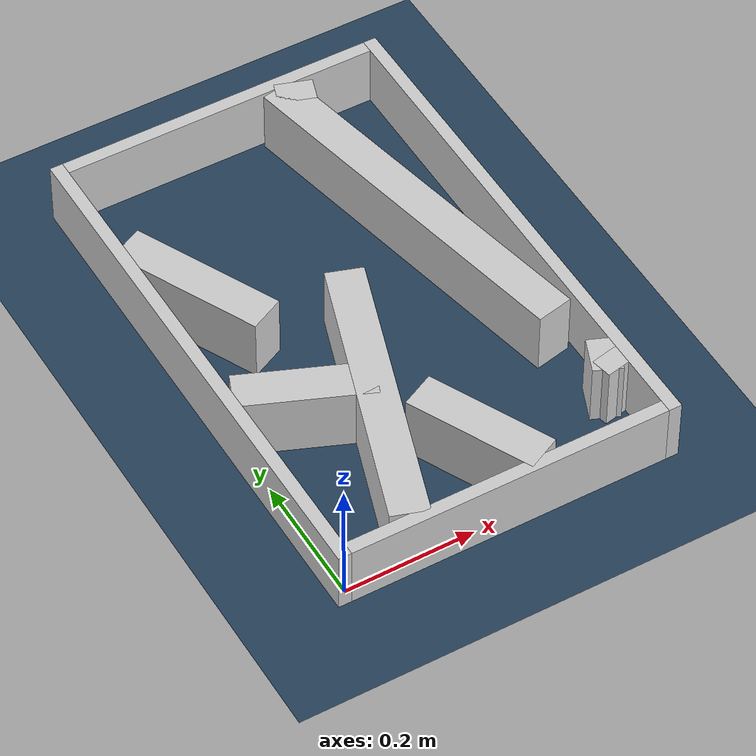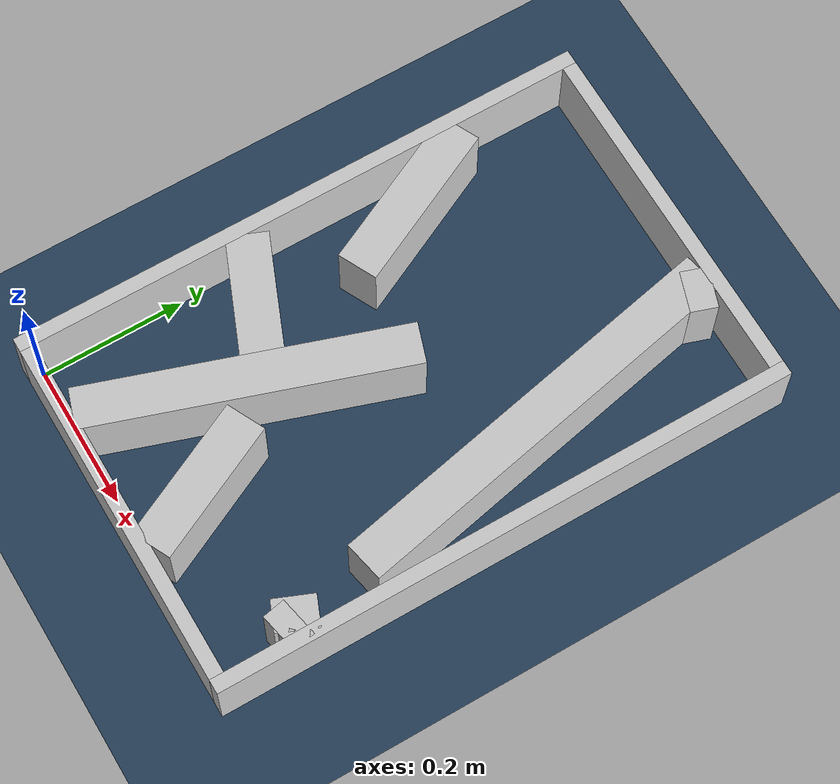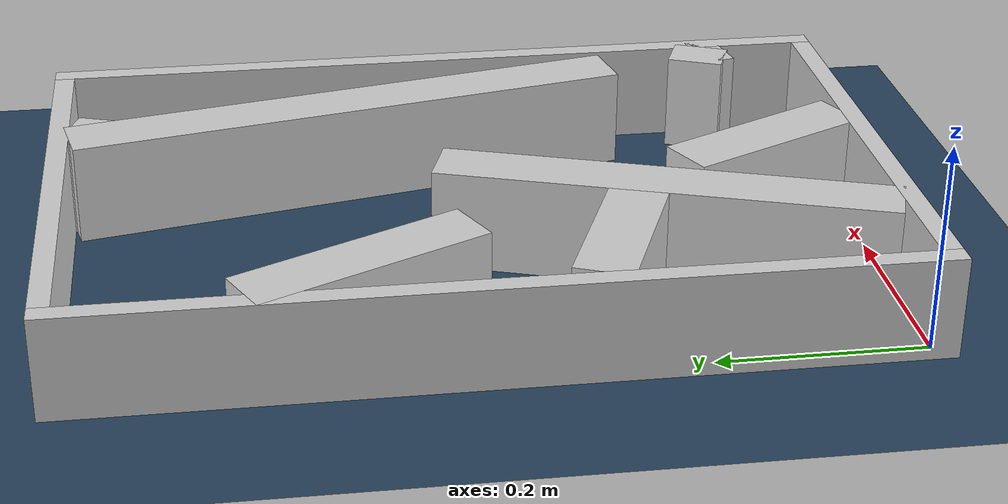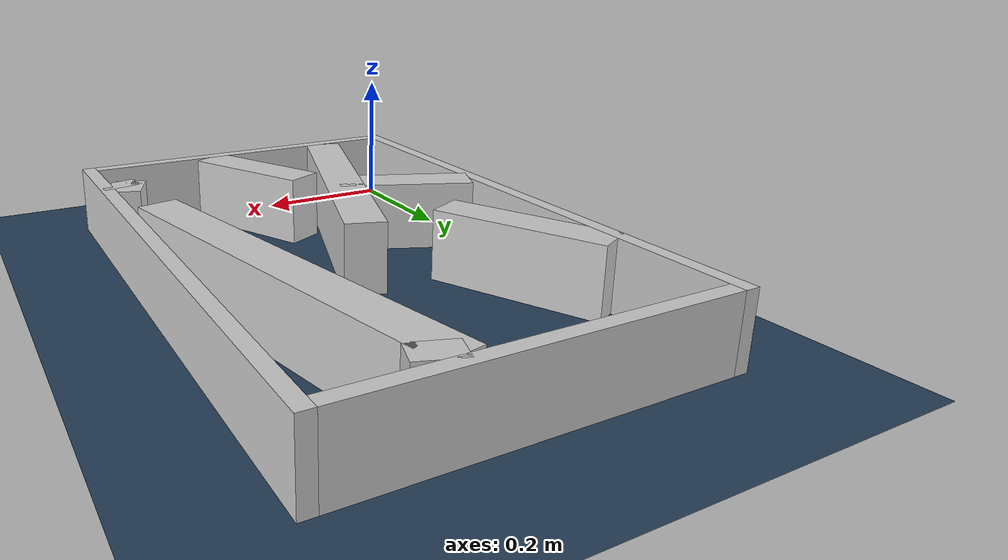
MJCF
<?xml version="1.0" ?>
<mujoco model="generated_real_template">
  <compiler angle="degree"/>
  <option timestep="0.002" integrator="implicitfast" iterations="100" cone="elliptic"/>
  <default>
    <geom density="1"/>
  </default>
  <asset>
    <texture builtin="gradient" height="3072" rgb1="0.3 0.5 0.7" rgb2="0 0 0" type="skybox" width="512"/>
    <texture builtin="checker" height="300" mark="edge" markrgb="0.8 0.8 0.8" name="groundplane" rgb1="0.2 0.3 0.4" rgb2="0.1 0.2 0.3" type="2d" width="300"/>
    <material name="groundplane" reflectance="0.2" texrepeat="5 5" texture="groundplane" texuniform="true"/>
  </asset>
  <worldbody>
    <light dir="0 0 -1" directional="true" pos="0 0 1.5"/>
    <geom name="floor" type="plane" condim="4" friction="0.5 0.005 0.001" material="groundplane" size="0 0 0.05"/>
    <body name="walls">
      <geom name="wall_boundary_left" type="box" condim="4" friction="1.0 0.005 0.0001" rgba="0.8 0.8 0.8 1" pos="-0.010000 0.387500 0.050000" euler="0 0 0.000000" size="0.010000 0.407500 0.050000"/>
      <geom name="wall_boundary_right" type="box" condim="4" friction="1.0 0.005 0.0001" rgba="0.8 0.8 0.8 1" pos="0.500000 0.387500 0.050000" euler="0 0 0.000000" size="0.010000 0.407500 0.050000"/>
      <geom name="wall_boundary_bottom" type="box" condim="4" friction="1.0 0.005 0.0001" rgba="0.8 0.8 0.8 1" pos="0.245000 -0.010000 0.050000" euler="0 0 0.000000" size="0.245000 0.010000 0.050000"/>
      <geom name="wall_boundary_top" type="box" condim="4" friction="1.0 0.005 0.0001" rgba="0.8 0.8 0.8 1" pos="0.245000 0.785000 0.050000" euler="0 0 0.000000" size="0.245000 0.010000 0.050000"/>
      <geom name="wall_inner_1_1" type="box" condim="4" friction="1.0 0.005 0.0001" rgba="0.8 0.8 0.8 1" pos="0.057995 0.508640 0.050000" euler="0 0 -63.958129" size="0.119326 0.028500 0.050000"/>
      <geom name="wall_inner_1_2" type="box" condim="4" friction="1.0 0.005 0.0001" rgba="0.8 0.8 0.8 1" pos="0.262224 0.090685 0.050000" euler="0 0 -63.958129" size="0.100932 0.028500 0.050000"/>
      <geom name="wall_inner_2_1" type="box" condim="4" friction="1.0 0.005 0.0001" rgba="0.8 0.8 0.8 1" pos="0.091465 0.265551 0.050000" euler="0 0 -22.451261" size="0.098967 0.028500 0.050000"/>
      <geom name="wall_inner_2_2" type="box" condim="4" friction="1.0 0.005 0.0001" rgba="0.8 0.8 0.8 1" pos="0.469696 0.109260 0.050000" euler="0 0 -22.451261" size="0.021970 0.028500 0.050000"/>
      <geom name="wall_inner_3_1" type="box" condim="4" friction="1.0 0.005 0.0001" rgba="0.8 0.8 0.8 1" pos="0.170903 0.209861 0.050000" euler="0 0 71.354144" size="0.221486 0.028500 0.050000"/>
      <geom name="wall_inner_3_2" type="box" condim="4" friction="1.0 0.005 0.0001" rgba="0.8 0.8 0.8 1" pos="0.355622 0.757292 0.050000" euler="0 0 71.354144" size="0.018689 0.028500 0.050000"/>
      <geom name="wall_inner_4_1" type="box" condim="4" friction="1.0 0.005 0.0001" rgba="0.8 0.8 0.8 1" pos="0.396411 0.493357 0.050000" euler="0 0 -78.310729" size="0.287607 0.028500 0.050000"/>
      <geom name="wall_inner_4_2" type="box" condim="4" friction="1.0 0.005 0.0001" rgba="0.8 0.8 0.8 1" pos="0.478815 0.095067 0.050000" euler="0 0 -78.310729" size="0.016163 0.028500 0.050000"/>
    </body>
  </worldbody>
</mujoco>
